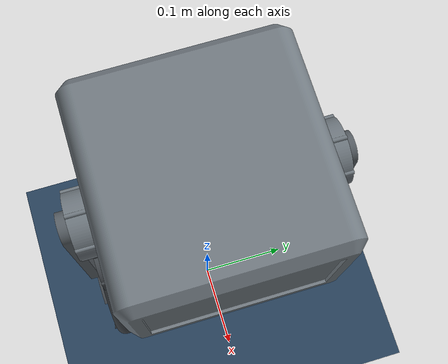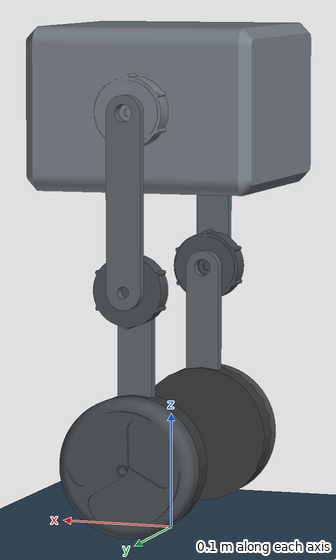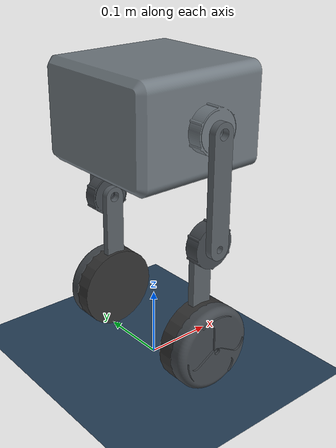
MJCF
<mujoco model="scene">
    <include file="robot.xml" />

    <visual>
        <headlight diffuse="0.6 0.6 0.6" ambient="0.3 0.3 0.3" specular="0 0 0" />
        <rgba haze="0.15 0.25 0.35 1" />
        <global azimuth="160" elevation="-20" />
    </visual>

    <asset>
        <texture type="skybox" builtin="gradient" rgb1="0.3 0.5 0.7" rgb2="0 0 0" width="512"
            height="3072" />
        <texture type="2d" name="groundplane" builtin="checker" mark="edge" rgb1="0.2 0.3 0.4"
            rgb2="0.1 0.2 0.3"
            markrgb="0.8 0.8 0.8" width="300" height="300" />
        <material name="groundplane" texture="groundplane" texuniform="true" texrepeat="5 5"
            reflectance="0.2" />
    </asset>

    <worldbody>
        <light pos="0 0 3.5" dir="0 0 -1" directional="true" />
        <geom name="floor" size="0 0 1" pos="0 0 0" type="plane" material="groundplane" friction="2.5 0.05 0.002" condim="4" />
    </worldbody>
</mujoco>

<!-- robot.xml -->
<!-- Generated using onshape-to-robot -->
<!-- Onshape document_id: e4340d7d6024c97acba5ed0c -->
<mujoco model="balance_v1.1">
  <compiler angle="radian" meshdir="assets" autolimits="true"/>
  <option timestep="0.005" gravity="0 0 -9.81"/>
  <default>
    <default class="balance_v1.1">
      <joint frictionloss="0.1" armature="0.005"/>
      <position kp="50" dampratio="1"/>
      <default class="visual">
        <geom type="mesh" contype="0" conaffinity="0" group="2"/>
      </default>
      <default class="collision">
        <geom group="3"/>
      </default>
    </default>
  </default>
  <worldbody>
    <!-- Link base_chassis -->
    <body name="base_chassis" pos="0 0 0.30" quat="1 0 0.0 0" childclass="balance_v1.1">
      <freejoint name="base_chassis_freejoint"/>

      <inertial pos="-0.00313936 2.4975e-17 0.07" mass="1.94421" fullinertia="0.0150867 0.0129744 0.0189515 0 0 0"/>
      <!-- Part base_chassis -->
      <geom type="mesh" class="visual" pos="0 1.38778e-17 0.07" quat="1 0 0 0" mesh="base_chassis" material="base_chassis_material"/>
      <geom name="base_chassis" type="mesh" class="collision" pos="0 1.38778e-17 0.07" quat="1 0 0 0" mesh="base_chassis" material="base_chassis_material"/>
      <!-- Link left_base_rod -->

      <!-- IMU LINK -->
      <body name="imu_link" pos="-0.000876166 1.80868e-17 0.0359">
        <site name="imu_site" pos="0 0 0" size="0.005" rgba="1 0 0 1"/>
      </body>

      <body name="left_base_rod" pos="2.94463e-18 0.12 0.07" quat="0.707107 0.707107 -1.11022e-16 -1.03112e-17">
        <!-- Joint from base_chassis to left_base_rod -->
        <joint axis="0 0 -1" name="left_hip_joint" type="hinge" frictionloss="0.05" damping="0.1"/>
        <inertial pos="6.98473e-18 -0.076487 -0.005" mass="0.061895" fullinertia="0.000146498 5.19435e-06 0.000150661 6.40253e-38 2.31366e-36 -2.88394e-20"/>
        <!-- Part left_base_rod -->
        <geom type="mesh" class="visual" pos="-3.08149e-33 -1.38778e-17 0.12" quat="0.707107 -0.707107 -0 -6.63716e-33" mesh="left_base_rod" material="left_base_rod_material"/>
        <geom type="mesh" class="collision" pos="-3.08149e-33 -1.38778e-17 0.12" quat="0.707107 -0.707107 -0 -6.63716e-33" mesh="left_base_rod" material="left_base_rod_material"/>
        <!-- Link left_knee_motor -->
        <body name="left_knee_motor" pos="-1.07852e-32 -0.15 -1.38778e-17" quat="0 1 0 0">
          <!-- Joint from left_base_rod to left_knee_motor -->
          <inertial pos="2.54706e-18 0 -0.00984935" mass="0.0703948" fullinertia="1.84709e-05 1.84709e-05 3.2354e-05 -2.27671e-37 -4.13111e-37 -2.75238e-21"/>
          <!-- Part left_knee_motor -->
          <geom type="mesh" class="visual" pos="1.54074e-33 -0.15 -0.12" quat="0.707107 0.707107 -0 2.07861e-33" mesh="left_knee_motor" material="left_knee_motor_material"/>
          <geom type="mesh" class="collision" pos="1.54074e-33 -0.15 -0.12" quat="0.707107 0.707107 -0 2.07861e-33" mesh="left_knee_motor" material="left_knee_motor_material"/>
          <!-- Link left_knee_rod -->
          <body name="left_knee_rod" pos="7.70372e-34 0 -0.02" quat="1 -0 3.05311e-16 5.55112e-17">
            <!-- Joint from left_knee_motor to left_knee_rod -->
            <joint axis="0 0 -1" name="left_knee_joint" type="hinge" frictionloss="0.05" damping="0.1"/>
            <inertial pos="3.28106e-19 0.0769044 -0.005" mass="0.0622485" fullinertia="0.000148404 5.20092e-06 0.000152568 6.41063e-38 -5.8041e-35 -2.9216e-20"/>
            <!-- Part left_knee_rod -->
            <geom type="mesh" class="visual" pos="-3.08149e-33 -0.15 -0.1" quat="0.707107 0.707107 1.11022e-16 -5.53216e-32" mesh="left_knee_rod" material="left_knee_rod_material"/>
            <geom type="mesh" class="collision" pos="-3.08149e-33 -0.15 -0.1" quat="0.707107 0.707107 1.11022e-16 -5.53216e-32" mesh="left_knee_rod" material="left_knee_rod_material"/>
            <!-- Link left_wheel -->
            <body name="left_wheel" pos="-1.3552e-18 0.15 1.38778e-17" quat="7.09109e-17 0.999931 0.0117314 6.92663e-17">
              <!-- Joint from left_knee_rod to left_wheel -->
              <joint axis="0 0 -1" name="left_wheel_joint" frictionloss="0.05" damping="0.1"/>
              <inertial pos="4.35104e-18 -1.11022e-16 -0.0152956" mass="0.360891" fullinertia="0.000338132 0.000338132 0.000622739 -8.13501e-22 6.20683e-37 -5.64245e-20"/>
              <!-- Part left_wheel -->
              <geom type="mesh" class="visual" pos="1.73472e-18 0.3 0.1" quat="0.707107 -0.707107 -0 -8.10658e-19" mesh="left_wheel" material="left_wheel_material"/>
              <geom name="left_wheel_contact" type="cylinder" size="0.06 0.015" pos="0 0 0" rgba="0.2 0.2 0.2 1" contype="1" conaffinity="1" solref="0.001 1" solimp="0.99 0.999 0.001" friction="0.1 0.01 0.001"/>
            </body>
          </body>
        </body>
      </body>
      <!-- Link right_base_rod -->
      <body name="right_base_rod" pos="3.61937e-22 -0.12 0.07" quat="0.707107 -0.707107 -0 -2.6245e-17">
        <!-- Joint from base_chassis to right_base_rod -->
        <joint axis="0 0 1" name="right_hip_joint" type="hinge" frictionloss="0.05" damping="0.1"/>
        <inertial pos="6.98473e-18 0.076487 -0.005" mass="0.061895" fullinertia="0.000146498 5.19435e-06 0.000150661 9.48681e-38 -1.40552e-41 2.88394e-20"/>
        <!-- Part right_base_rod -->
        <geom type="mesh" class="visual" pos="0 0 0.12" quat="0.707107 0.707107 -0 1.08267e-32" mesh="right_base_rod" material="right_base_rod_material"/>
        <geom type="mesh" class="collision" pos="0 0 0.12" quat="0.707107 0.707107 -0 1.08267e-32" mesh="right_base_rod" material="right_base_rod_material"/>
        <!-- Link right_knee_motor -->
        <body name="right_knee_motor" pos="1.08058e-19 0.15 0" quat="2.1381e-22 0.8594 0.511303 -1.85538e-21">
          <!-- Joint from right_base_rod to right_knee_motor -->
          <inertial pos="-1.32929e-17 0 -0.00984935" mass="0.0703948" fullinertia="1.84709e-05 1.84709e-05 3.2354e-05 6.53231e-22 -1.29992e-37 2.75238e-21"/>
          <!-- Part right_knee_motor -->
          <geom type="mesh" class="visual" pos="-1.38778e-17 0.15 -0.12" quat="0.707107 -0.707107 0 -5.99125e-18" mesh="right_knee_motor" material="right_knee_motor_material"/>
          <geom type="mesh" class="collision" pos="-1.38778e-17 0.15 -0.12" quat="0.707107 -0.707107 0 -5.99125e-18" mesh="right_knee_motor" material="right_knee_motor_material"/>
          <!-- Link right_knee_rod -->
          <body name="right_knee_rod" pos="0 6.93889e-18 -0.02" quat="1 0 1.09668e-17 1.92891e-33">
            <!-- Joint from right_knee_motor to right_knee_rod -->
            <joint axis="0 0 1" name="right_knee_joint" type="hinge" frictionloss="0.05" damping="0.1"/>
            <inertial pos="0.0675858 -0.036694 -0.005" mass="0.0622485" fullinertia="3.78027e-05 0.000115802 0.000152568 6.00483e-05 -5.13024e-20 2.7899e-20"/>
            <!-- Part right_knee_rod -->
            <geom type="mesh" class="visual" pos="-0.131824 0.0715707 -0.1" quat="0.607688 -0.607688 -0.361546 0.361546" mesh="right_knee_rod" material="right_knee_rod_material"/>
            <geom type="mesh" class="collision" pos="-0.131824 0.0715707 -0.1" quat="0.607688 -0.607688 -0.361546 0.361546" mesh="right_knee_rod" material="right_knee_rod_material"/>
            <!-- Link right_wheel -->
            <body name="right_wheel" pos="0.131824 -0.0715707 2.77556e-17" quat="8.75485e-17 0.8594 0.511303 4.64912e-17">
              <!-- Joint from right_knee_rod to right_wheel -->
              <joint axis="0 0 1" name="right_wheel_joint" frictionloss="0.05" damping="0.1"/>
              <inertial pos="-1.94601e-17 5.55112e-17 -0.0152956" mass="0.360891" fullinertia="0.000338132 0.000338132 0.000622739 -1.3844e-36 2.73752e-21 6.64466e-23"/>
              <!-- Part right_wheel -->
              <geom type="mesh" class="visual" pos="-3.46945e-17 -0.3 0.1" quat="0.707107 0.707107 0 -2.30268e-17" mesh="right_wheel" material="right_wheel_material"/>
              <geom name="right_wheel_contact" type="cylinder" size="0.06 0.015" pos="0 0 0" rgba="0.2 0.2 0.2 1" contype="1" conaffinity="1" solref="0.001 1" solimp="0.99 0.999 0.001" friction="0.1 0.01 0.001"/>
            </body>
          </body>
        </body>
      </body>
    </body>
  </worldbody>
  <asset>
    <mesh file="left_knee_motor.stl"/>
    <mesh file="right_base_rod.stl"/>
    <mesh file="base_chassis.stl"/>
    <mesh file="left_knee_rod.stl"/>
    <mesh file="right_knee_motor.stl"/>
    <mesh file="right_knee_rod.stl"/>
    <mesh file="right_wheel.stl"/>
    <mesh file="left_base_rod.stl"/>
    <mesh file="left_wheel.stl"/>
    <material name="base_chassis_material" rgba="0.439216 0.47451 0.501961 1"/>
    <material name="left_base_rod_material" rgba="0.34902 0.376471 0.4 1"/>
    <material name="left_knee_motor_material" rgba="0.262745 0.282353 0.301961 1"/>
    <material name="left_knee_rod_material" rgba="0.34902 0.376471 0.4 1"/>
    <material name="left_wheel_material" rgba="0.262745 0.282353 0.301961 1"/>
    <material name="right_base_rod_material" rgba="0.34902 0.376471 0.4 1"/>
    <material name="right_knee_motor_material" rgba="0.262745 0.282353 0.301961 1"/>
    <material name="right_knee_rod_material" rgba="0.34902 0.376471 0.4 1"/>
    <material name="right_wheel_material" rgba="0.262745 0.282353 0.301961 1"/>
  </asset>
  <actuator>

    <motor class="balance_v1.1" name="left_wheel_joint" joint="left_wheel_joint" forcerange="-15 15"
           gear="4" ctrllimited="true" ctrlrange="-1 1"/>
    <motor class="balance_v1.1" name="right_wheel_joint" joint="right_wheel_joint" forcerange="-15 15"
           gear="4" ctrllimited="true" ctrlrange="-1 1"/>

    <position name="left_hip_pos_con" joint="left_hip_joint" kp="5" kv="0.7" ctrllimited="true" ctrlrange="-2.5 2.5"/>
    <position name="right_hip_pos_con" joint="right_hip_joint" kp="5" kv="0.7" ctrlrange="-2.5 2.5"/>
    <position name="left_knee_pos_con" joint="left_knee_joint" kp="5" kv="0.7" ctrlrange="-2.5 2.5"/>
    <position name="right_knee_pos_con" joint="right_knee_joint" kp="5" kv="0.7" ctrlrange="-2.5 2.5"/>

  </actuator>

  <sensor>
    <accelerometer name="imu_acc" site="imu_site"/>
    <gyro    name="imu_gyro" site="imu_site"/>
  </sensor>

  <equality/>
</mujoco>
